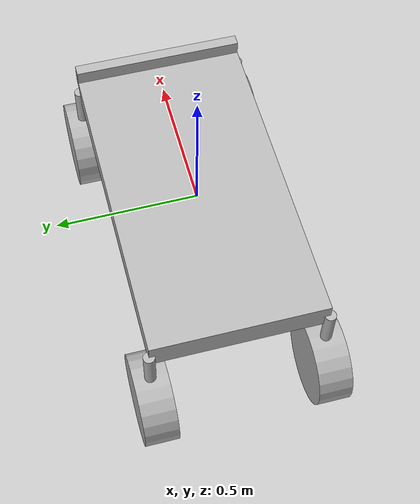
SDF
<?xml version="1.0"?>
<sdf version='1.8'>
  <model name='terby'>

    <!-- CHASSIS -->
    <link name='base_link'>
      <inertial>
        <pose>0 0 0 0 0 0</pose>
        <mass>0.784</mass>
        <inertia>
          <ixx>0.00212</ixx>
          <ixy>0</ixy>
          <ixz>0</ixz>
          <iyy>0.00115</iyy>
          <iyz>0</iyz>
          <izz>0.00149</izz>
        </inertia>
      </inertial>
      <collision name='base_link_collision'>
        <geometry>
          <box>
            <size>1.135 0.614 0.10</size>
          </box>
        </geometry>
        <surface>
          <contact><ode/></contact>
          <friction>
            <ode><mu>0.05</mu><mu2>0.05</mu2></ode>
          </friction>
        </surface>
      </collision>
      <visual name='base_link_visual'>
        <geometry>
          <box>
            <size>1.135 0.614 0.10</size>
          </box>
        </geometry>
      </visual>
      <!-- Front bumper: marks +X (forward) direction -->
      <visual name='front_bumper_visual'>
        <pose>0.5875 0 0.06 0 0 0</pose>
        <geometry>
          <box>
            <size>0.04 0.614 0.08</size>
          </box>
        </geometry>
      </visual>
    </link>

    <!-- ================================================================
         FRONT LEFT
    ================================================================ -->
    <joint name='steeringjoint_frontleft' type='revolute'>
      <pose relative_to='base_link'>0.5675 0.307 0 0 0 0</pose>
      <parent>base_link</parent>
      <child>fl_steering_link</child>
      <axis>
        <xyz>0 0 1</xyz>
        <limit>
          <lower>-2.1</lower>
          <upper>2.1</upper>
          <effort>50</effort>
          <velocity>6.28</velocity>
        </limit>
        <dynamics>
          <damping>0.05</damping>
          <friction>0.1</friction>
        </dynamics>
      </axis>
    </joint>
    <link name='fl_steering_link'>
      <pose relative_to='steeringjoint_frontleft'>0 0 0 0 0 0</pose>
      <inertial>
        <pose>0 0 -0.155 0 0 0</pose>
        <mass>0.306</mass>
        <inertia>
          <ixx>0.00037</ixx>
          <ixy>0</ixy>
          <ixz>0</ixz>
          <iyy>0.00022</iyy>
          <iyz>0</iyz>
          <izz>0.00046</izz>
        </inertia>
      </inertial>
      <collision name='fl_steering_collision'>
        <pose>0 0 -0.155 0 0 0</pose>
        <geometry>
          <cylinder>
            <radius>0.02</radius>
            <length>0.31</length>
          </cylinder>
        </geometry>
        <surface>
          <contact><ode/></contact>
          <friction><ode><mu>0.05</mu><mu2>0.05</mu2></ode></friction>
        </surface>
      </collision>
      <visual name='fl_steering_visual'>
        <pose>0 0 -0.155 0 0 0</pose>
        <geometry>
          <cylinder>
            <radius>0.02</radius>
            <length>0.31</length>
          </cylinder>
        </geometry>
      </visual>
    </link>
    <joint name='wheeljoint_frontleft' type='revolute'>
      <pose relative_to='fl_steering_link'>0 0 -0.31 0 0 0</pose>
      <parent>fl_steering_link</parent>
      <child>fl_wheel_link</child>
      <axis>
        <xyz>0 1 0</xyz>
        <limit>
          <effort>15</effort>
          <velocity>20</velocity>
          <lower>-1e+16</lower>
          <upper>1e+16</upper>
        </limit>
        <dynamics>
          <damping>0.05</damping>
          <friction>0.1</friction>
        </dynamics>
      </axis>
    </joint>
    <link name='fl_wheel_link'>
      <pose relative_to='wheeljoint_frontleft'>0 0 0 0 0 0</pose>
      <inertial>
        <mass>1.107</mass>
        <inertia>
          <ixx>0.01299</ixx>
          <ixy>0</ixy>
          <ixz>0</ixz>
          <iyy>0.00731</iyy>
          <iyz>0</iyz>
          <izz>0.00731</izz>
        </inertia>
      </inertial>
      <collision name='fl_wheel_collision'>
        <pose>0 0 0 1.5708 0 0</pose>
        <geometry>
          <cylinder>
            <radius>0.162</radius>
            <length>0.120</length>
          </cylinder>
        </geometry>
        <surface>
          <friction><ode><mu>1.0</mu><mu2>1.0</mu2></ode></friction>
          <contact><ode/></contact>
        </surface>
      </collision>
      <visual name='fl_wheel_visual'>
        <pose>0 0 0 1.5708 0 0</pose>
        <geometry>
          <cylinder>
            <radius>0.162</radius>
            <length>0.120</length>
          </cylinder>
        </geometry>
      </visual>
    </link>

    <!-- ================================================================
         FRONT RIGHT
    ================================================================ -->
    <joint name='steeringjoint_frontright' type='revolute'>
      <pose relative_to='base_link'>0.5675 -0.307 0 0 0 0</pose>
      <parent>base_link</parent>
      <child>fr_steering_link</child>
      <axis>
        <xyz>0 0 1</xyz>
        <limit>
          <lower>-2.1</lower>
          <upper>2.1</upper>
          <effort>50</effort>
          <velocity>6.28</velocity>
        </limit>
        <dynamics>
          <damping>0.05</damping>
          <friction>0.1</friction>
        </dynamics>
      </axis>
    </joint>
    <link name='fr_steering_link'>
      <pose relative_to='steeringjoint_frontright'>0 0 0 0 0 0</pose>
      <inertial>
        <pose>0 0 -0.155 0 0 0</pose>
        <mass>0.306</mass>
        <inertia>
          <ixx>0.00037</ixx>
          <ixy>0</ixy>
          <ixz>0</ixz>
          <iyy>0.00022</iyy>
          <iyz>0</iyz>
          <izz>0.00046</izz>
        </inertia>
      </inertial>
      <collision name='fr_steering_collision'>
        <pose>0 0 -0.155 0 0 0</pose>
        <geometry>
          <cylinder>
            <radius>0.02</radius>
            <length>0.31</length>
          </cylinder>
        </geometry>
        <surface>
          <contact><ode/></contact>
          <friction><ode><mu>0.05</mu><mu2>0.05</mu2></ode></friction>
        </surface>
      </collision>
      <visual name='fr_steering_visual'>
        <pose>0 0 -0.155 0 0 0</pose>
        <geometry>
          <cylinder>
            <radius>0.02</radius>
            <length>0.31</length>
          </cylinder>
        </geometry>
      </visual>
    </link>
    <joint name='wheeljoint_frontright' type='revolute'>
      <pose relative_to='fr_steering_link'>0 0 -0.31 0 0 0</pose>
      <parent>fr_steering_link</parent>
      <child>fr_wheel_link</child>
      <axis>
        <xyz>0 1 0</xyz>
        <limit>
          <effort>15</effort>
          <velocity>20</velocity>
          <lower>-1e+16</lower>
          <upper>1e+16</upper>
        </limit>
        <dynamics>
          <damping>0.05</damping>
          <friction>0.1</friction>
        </dynamics>
      </axis>
    </joint>
    <link name='fr_wheel_link'>
      <pose relative_to='wheeljoint_frontright'>0 0 0 0 0 0</pose>
      <inertial>
        <mass>1.107</mass>
        <inertia>
          <ixx>0.01299</ixx>
          <ixy>0</ixy>
          <ixz>0</ixz>
          <iyy>0.00731</iyy>
          <iyz>0</iyz>
          <izz>0.00731</izz>
        </inertia>
      </inertial>
      <collision name='fr_wheel_collision'>
        <pose>0 0 0 1.5708 0 0</pose>
        <geometry>
          <cylinder>
            <radius>0.162</radius>
            <length>0.120</length>
          </cylinder>
        </geometry>
        <surface>
          <friction><ode><mu>1.0</mu><mu2>1.0</mu2></ode></friction>
          <contact><ode/></contact>
        </surface>
      </collision>
      <visual name='fr_wheel_visual'>
        <pose>0 0 0 1.5708 0 0</pose>
        <geometry>
          <cylinder>
            <radius>0.162</radius>
            <length>0.120</length>
          </cylinder>
        </geometry>
      </visual>
    </link>

    <!-- ================================================================
         REAR LEFT
    ================================================================ -->
    <joint name='steeringjoint_backleft' type='revolute'>
      <pose relative_to='base_link'>-0.5675 0.307 0 0 0 0</pose>
      <parent>base_link</parent>
      <child>rl_steering_link</child>
      <axis>
        <xyz>0 0 1</xyz>
        <limit>
          <lower>-2.1</lower>
          <upper>2.1</upper>
          <effort>50</effort>
          <velocity>6.28</velocity>
        </limit>
        <dynamics>
          <damping>0.05</damping>
          <friction>0.1</friction>
        </dynamics>
      </axis>
    </joint>
    <link name='rl_steering_link'>
      <pose relative_to='steeringjoint_backleft'>0 0 0 0 0 0</pose>
      <inertial>
        <pose>0 0 -0.155 0 0 0</pose>
        <mass>0.306</mass>
        <inertia>
          <ixx>0.00037</ixx>
          <ixy>0</ixy>
          <ixz>0</ixz>
          <iyy>0.00022</iyy>
          <iyz>0</iyz>
          <izz>0.00046</izz>
        </inertia>
      </inertial>
      <collision name='rl_steering_collision'>
        <pose>0 0 -0.155 0 0 0</pose>
        <geometry>
          <cylinder>
            <radius>0.02</radius>
            <length>0.31</length>
          </cylinder>
        </geometry>
        <surface>
          <contact><ode/></contact>
          <friction><ode><mu>0.05</mu><mu2>0.05</mu2></ode></friction>
        </surface>
      </collision>
      <visual name='rl_steering_visual'>
        <pose>0 0 -0.155 0 0 0</pose>
        <geometry>
          <cylinder>
            <radius>0.02</radius>
            <length>0.31</length>
          </cylinder>
        </geometry>
      </visual>
    </link>
    <joint name='wheeljoint_backleft' type='revolute'>
      <pose relative_to='rl_steering_link'>0 0 -0.31 0 0 0</pose>
      <parent>rl_steering_link</parent>
      <child>rl_wheel_link</child>
      <axis>
        <xyz>0 1 0</xyz>
        <limit>
          <effort>15</effort>
          <velocity>20</velocity>
          <lower>-1e+16</lower>
          <upper>1e+16</upper>
        </limit>
        <dynamics>
          <damping>0.05</damping>
          <friction>0.1</friction>
        </dynamics>
      </axis>
    </joint>
    <link name='rl_wheel_link'>
      <pose relative_to='wheeljoint_backleft'>0 0 0 0 0 0</pose>
      <inertial>
        <mass>1.107</mass>
        <inertia>
          <ixx>0.01299</ixx>
          <ixy>0</ixy>
          <ixz>0</ixz>
          <iyy>0.00731</iyy>
          <iyz>0</iyz>
          <izz>0.00731</izz>
        </inertia>
      </inertial>
      <collision name='rl_wheel_collision'>
        <pose>0 0 0 1.5708 0 0</pose>
        <geometry>
          <cylinder>
            <radius>0.162</radius>
            <length>0.120</length>
          </cylinder>
        </geometry>
        <surface>
          <friction><ode><mu>1.0</mu><mu2>1.0</mu2></ode></friction>
          <contact><ode/></contact>
        </surface>
      </collision>
      <visual name='rl_wheel_visual'>
        <pose>0 0 0 1.5708 0 0</pose>
        <geometry>
          <cylinder>
            <radius>0.162</radius>
            <length>0.120</length>
          </cylinder>
        </geometry>
      </visual>
    </link>

    <!-- ================================================================
         REAR RIGHT
    ================================================================ -->
    <joint name='steeringjoint_backright' type='revolute'>
      <pose relative_to='base_link'>-0.5675 -0.307 0 0 0 0</pose>
      <parent>base_link</parent>
      <child>rr_steering_link</child>
      <axis>
        <xyz>0 0 1</xyz>
        <limit>
          <lower>-2.1</lower>
          <upper>2.1</upper>
          <effort>50</effort>
          <velocity>6.28</velocity>
        </limit>
        <dynamics>
          <damping>0.05</damping>
          <friction>0.1</friction>
        </dynamics>
      </axis>
    </joint>
    <link name='rr_steering_link'>
      <pose relative_to='steeringjoint_backright'>0 0 0 0 0 0</pose>
      <inertial>
        <pose>0 0 -0.155 0 0 0</pose>
        <mass>0.306</mass>
        <inertia>
          <ixx>0.00037</ixx>
          <ixy>0</ixy>
          <ixz>0</ixz>
          <iyy>0.00022</iyy>
          <iyz>0</iyz>
          <izz>0.00046</izz>
        </inertia>
      </inertial>
      <collision name='rr_steering_collision'>
        <pose>0 0 -0.155 0 0 0</pose>
        <geometry>
          <cylinder>
            <radius>0.02</radius>
            <length>0.31</length>
          </cylinder>
        </geometry>
        <surface>
          <contact><ode/></contact>
          <friction><ode><mu>0.05</mu><mu2>0.05</mu2></ode></friction>
        </surface>
      </collision>
      <visual name='rr_steering_visual'>
        <pose>0 0 -0.155 0 0 0</pose>
        <geometry>
          <cylinder>
            <radius>0.02</radius>
            <length>0.31</length>
          </cylinder>
        </geometry>
      </visual>
    </link>
    <joint name='wheeljoint_backright' type='revolute'>
      <pose relative_to='rr_steering_link'>0 0 -0.31 0 0 0</pose>
      <parent>rr_steering_link</parent>
      <child>rr_wheel_link</child>
      <axis>
        <xyz>0 1 0</xyz>
        <limit>
          <effort>15</effort>
          <velocity>20</velocity>
          <lower>-1e+16</lower>
          <upper>1e+16</upper>
        </limit>
        <dynamics>
          <damping>0.05</damping>
          <friction>0.1</friction>
        </dynamics>
      </axis>
    </joint>
    <link name='rr_wheel_link'>
      <pose relative_to='wheeljoint_backright'>0 0 0 0 0 0</pose>
      <inertial>
        <mass>1.107</mass>
        <inertia>
          <ixx>0.01299</ixx>
          <ixy>0</ixy>
          <ixz>0</ixz>
          <iyy>0.00731</iyy>
          <iyz>0</iyz>
          <izz>0.00731</izz>
        </inertia>
      </inertial>
      <collision name='rr_wheel_collision'>
        <pose>0 0 0 1.5708 0 0</pose>
        <geometry>
          <cylinder>
            <radius>0.162</radius>
            <length>0.120</length>
          </cylinder>
        </geometry>
        <surface>
          <friction><ode><mu>1.0</mu><mu2>1.0</mu2></ode></friction>
          <contact><ode/></contact>
        </surface>
      </collision>
      <visual name='rr_wheel_visual'>
        <pose>0 0 0 1.5708 0 0</pose>
        <geometry>
          <cylinder>
            <radius>0.162</radius>
            <length>0.120</length>
          </cylinder>
        </geometry>
      </visual>
    </link>

    <static>0</static>

    <!-- ================================================================
         PLUGINS
    ================================================================ -->
    <plugin
        filename="ignition-gazebo-joint-state-publisher-system"
        name="gz::sim::systems::JointStatePublisher">
    </plugin>

    <plugin filename="ignition-gazebo-joint-position-controller-system"
            name="gz::sim::systems::JointPositionController">
        <joint_name>steeringjoint_frontleft</joint_name>
        <topic>wheel/frontleft/steering/pos</topic>
        <p_gain>10</p_gain>
        <i_gain>0.01</i_gain>
        <d_gain>0.1</d_gain>
        <i_max>1</i_max>
        <i_min>-1</i_min>
        <cmd_max>1000</cmd_max>
        <cmd_min>-1000</cmd_min>
    </plugin>
    <plugin filename="ignition-gazebo-joint-position-controller-system"
            name="gz::sim::systems::JointPositionController">
        <joint_name>steeringjoint_backleft</joint_name>
        <topic>wheel/backleft/steering/pos</topic>
        <p_gain>10</p_gain>
        <i_gain>0.01</i_gain>
        <d_gain>0.1</d_gain>
        <i_max>1</i_max>
        <i_min>-1</i_min>
        <cmd_max>1000</cmd_max>
        <cmd_min>-1000</cmd_min>
    </plugin>
    <plugin filename="ignition-gazebo-joint-position-controller-system"
            name="gz::sim::systems::JointPositionController">
        <joint_name>steeringjoint_frontright</joint_name>
        <topic>wheel/frontright/steering/pos</topic>
        <p_gain>10</p_gain>
        <i_gain>0.01</i_gain>
        <d_gain>0.1</d_gain>
        <i_max>1</i_max>
        <i_min>-1</i_min>
        <cmd_max>1000</cmd_max>
        <cmd_min>-1000</cmd_min>
    </plugin>
    <plugin filename="ignition-gazebo-joint-position-controller-system"
            name="gz::sim::systems::JointPositionController">
        <joint_name>steeringjoint_backright</joint_name>
        <topic>wheel/backright/steering/pos</topic>
        <p_gain>10</p_gain>
        <i_gain>0.01</i_gain>
        <d_gain>0.1</d_gain>
        <i_max>1</i_max>
        <i_min>-1</i_min>
        <cmd_max>1000</cmd_max>
        <cmd_min>-1000</cmd_min>
    </plugin>

    <plugin filename="ignition-gazebo-joint-controller-system"
            name="gz::sim::systems::JointController">
        <joint_name>wheeljoint_frontleft</joint_name>
        <topic>wheel/frontleft/traction/vel</topic>
        <use_force_commands>true</use_force_commands>
        <p_gain>10</p_gain>
    </plugin>
    <plugin filename="ignition-gazebo-joint-controller-system"
            name="gz::sim::systems::JointController">
        <joint_name>wheeljoint_backleft</joint_name>
        <topic>wheel/backleft/traction/vel</topic>
        <use_force_commands>true</use_force_commands>
        <p_gain>10</p_gain>
    </plugin>
    <plugin filename="ignition-gazebo-joint-controller-system"
            name="gz::sim::systems::JointController">
        <joint_name>wheeljoint_frontright</joint_name>
        <topic>wheel/frontright/traction/vel</topic>
        <use_force_commands>true</use_force_commands>
        <p_gain>10</p_gain>
    </plugin>
    <plugin filename="ignition-gazebo-joint-controller-system"
            name="gz::sim::systems::JointController">
        <joint_name>wheeljoint_backright</joint_name>
        <topic>wheel/backright/traction/vel</topic>
        <use_force_commands>true</use_force_commands>
        <p_gain>10</p_gain>
    </plugin>

  </model>
</sdf>
